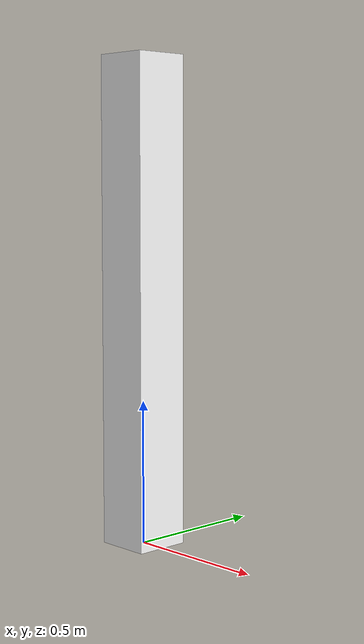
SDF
<?xml version='1.0'?>
<sdf version='1.4'>
    <model name="slam_pole">
        <static>true</static>
	    <link name="link">
		<collision name='collision'>
		    <geometry>
			<mesh>
			    <uri>model://slam_pole/meshes/slam_pole.dae</uri>
			</mesh>
		    </geometry>
		</collision>
		<visual name='visual'>
		    <geometry>
			<mesh>
			    <uri>model://slam_pole/meshes/slam_pole.dae</uri>
			</mesh>
		    </geometry>
		</visual>
	    </link>
    </model>
</sdf>
